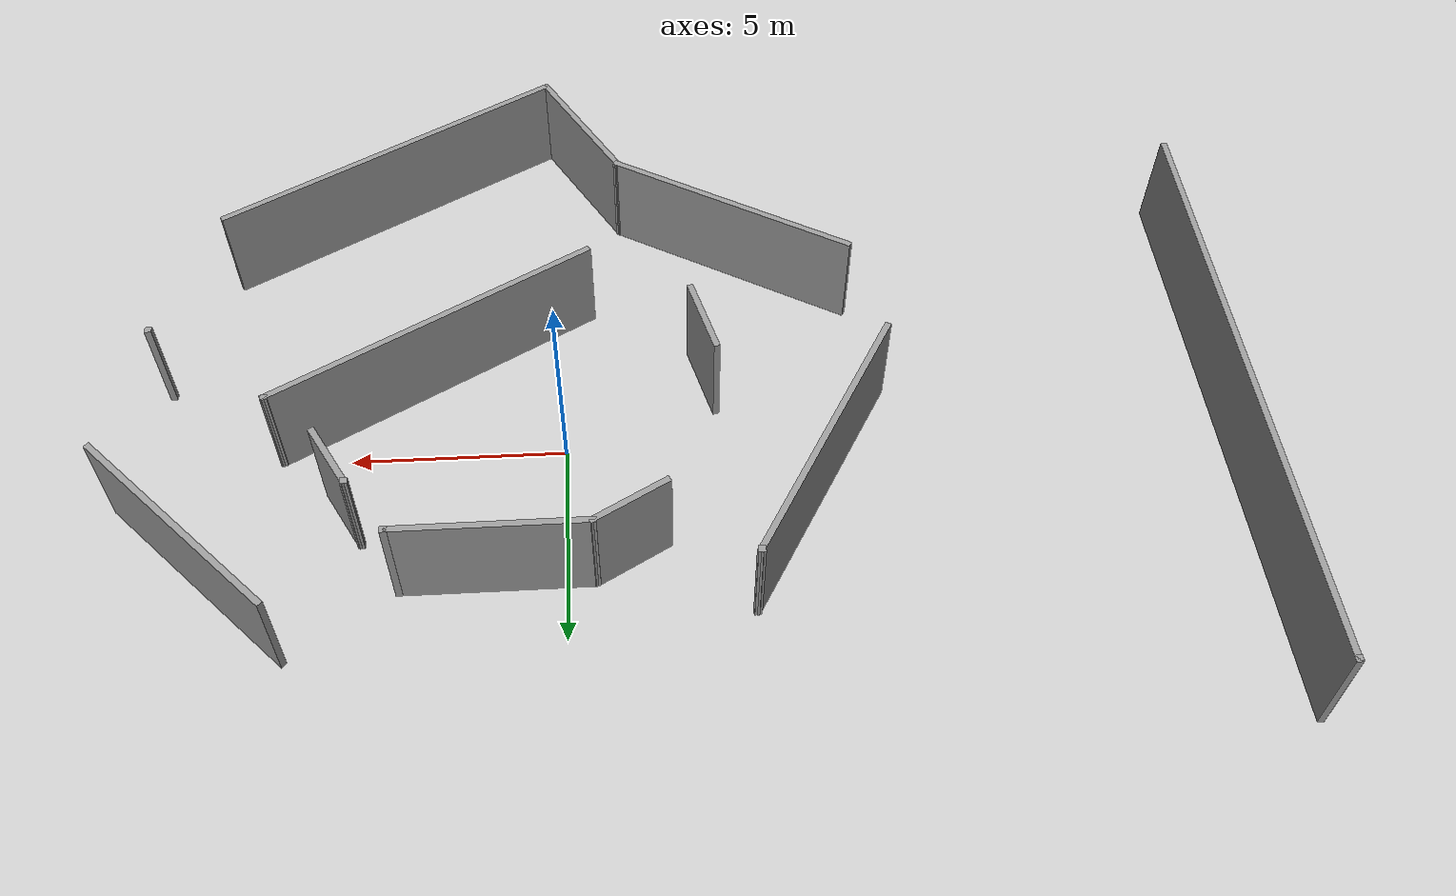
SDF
<sdf version="1.7">
 <world name="default">
  <light name="sun" type="directional">
   <pose>0 0 10 0 -0 0</pose>
   <diffuse>0.8 0.8 0.8 1</diffuse>
   <specular>0.2 0.2 0.2 1</specular>
   <attenuation>
    <range>1000</range>
    <constant>0.9</constant>
    <linear>0.01</linear>
    <quadratic>0.001</quadratic>
   </attenuation>
   <direction>-0.5 0.1 -0.9</direction>
   <spot><inner_angle>0</inner_angle><outer_angle>0</outer_angle><falloff>0</falloff></spot>
  </light>
  <model name="ground_plane">
   <static>1</static>
   <link name="link">
    <collision name="collision">
     <geometry><plane><normal>0 0 1</normal><size>100 100</size></plane></geometry>
     <surface>
      <contact><collide_bitmask>65535</collide_bitmask></contact>
      <friction><ode><mu>100</mu><mu2>50</mu2></ode></friction>
     </surface>
    </collision>
    <visual name="visual">
     <cast_shadows>0</cast_shadows>
     <geometry><plane><normal>0 0 1</normal><size>100 100</size></plane></geometry>
     <material>
      <script><uri>file://media/materials/scripts/gazebo.material</uri><name>Gazebo/Grey</name></script>
     </material>
    </visual>
   </link>
  </model>
  <gravity>0 0 -9.8</gravity>
  <magnetic_field>6e-06 2.3e-05 -4.2e-05</magnetic_field>
  <atmosphere type="adiabatic"/>
  <physics type="ode">
   <max_step_size>0.001</max_step_size>
   <real_time_factor>1</real_time_factor>
   <real_time_update_rate>1000</real_time_update_rate>
  </physics>
  <scene><ambient>0.4 0.4 0.4 1</ambient><background>0.7 0.7 0.7 1</background><shadows>1</shadows></scene>
  <spherical_coordinates>
   <surface_model>EARTH_WGS84</surface_model>
   <latitude_deg>0</latitude_deg>
   <longitude_deg>0</longitude_deg>
   <elevation>0</elevation>
   <heading_deg>0</heading_deg>
  </spherical_coordinates>
  <model name="world_walls">
   <pose>-2.636 -1.33743 0 0 -0 0</pose>
   <link name="Wall_0">
    <collision name="Wall_0_Collision">
     <geometry><box><size>2 0.15 2.5</size></box></geometry>
     <pose>0 0 1.25 0 -0 0</pose>
    </collision>
    <visual name="Wall_0_Visual">
     <pose>0 0 1.25 0 -0 0</pose>
     <geometry><box><size>2 0.15 2.5</size></box></geometry>
     <material>
      <script><uri>file://media/materials/scripts/gazebo.material</uri><name>Gazebo/Grey</name></script>
      <ambient>1 1 1 1</ambient>
     </material>
     <meta><layer>0</layer></meta>
    </visual>
    <pose>-0.683407 -0.62909 0 0 -0 1.8326</pose>
   </link>
   <link name="Wall_10">
    <collision name="Wall_10_Collision">
     <geometry><box><size>0.16 0.15 2.5</size></box></geometry>
     <pose>0 0 1.25 0 -0 0</pose>
    </collision>
    <visual name="Wall_10_Visual">
     <pose>0 0 1.25 0 -0 0</pose>
     <geometry><box><size>0.16 0.15 2.5</size></box></geometry>
     <material>
      <script><uri>file://media/materials/scripts/gazebo.material</uri><name>Gazebo/Grey</name></script>
      <ambient>1 1 1 1</ambient>
     </material>
     <meta><layer>0</layer></meta>
    </visual>
    <pose>6.32684 4.94438 0 0 -0 0</pose>
   </link>
   <link name="Wall_11">
    <collision name="Wall_11_Collision">
     <geometry><box><size>4.5 0.15 2.5</size></box></geometry>
     <pose>0 0 1.25 0 -0 0</pose>
    </collision>
    <visual name="Wall_11_Visual">
     <pose>0 0 1.25 0 -0 0</pose>
     <geometry><box><size>4.5 0.15 2.5</size></box></geometry>
     <material>
      <script><uri>file://media/materials/scripts/gazebo.material</uri><name>Gazebo/Grey</name></script>
      <ambient>1 1 1 1</ambient>
     </material>
     <meta><layer>0</layer></meta>
    </visual>
    <pose>4.15684 4.94438 0 0 -0 3.14159</pose>
   </link>
   <link name="Wall_12">
    <collision name="Wall_12_Collision">
     <geometry><box><size>2 0.15 2.5</size></box></geometry>
     <pose>0 0 1.25 0 -0 0</pose>
    </collision>
    <visual name="Wall_12_Visual">
     <pose>0 0 1.25 0 -0 0</pose>
     <geometry><box><size>2 0.15 2.5</size></box></geometry>
     <material>
      <script><uri>file://media/materials/scripts/gazebo.material</uri><name>Gazebo/Grey</name></script>
      <ambient>1 1 1 1</ambient>
     </material>
     <meta><layer>0</layer></meta>
    </visual>
    <pose>1.18076 4.48188 0 0 -0 -2.61799</pose>
   </link>
   <link name="Wall_14">
    <collision name="Wall_14_Collision">
     <geometry><box><size>0.16 0.15 2.5</size></box></geometry>
     <pose>0 0 1.25 0 -0 0</pose>
    </collision>
    <visual name="Wall_14_Visual">
     <pose>0 0 1.25 0 -0 0</pose>
     <geometry><box><size>0.16 0.15 2.5</size></box></geometry>
     <material>
      <script><uri>file://media/materials/scripts/gazebo.material</uri><name>Gazebo/Grey</name></script>
      <ambient>1 1 1 1</ambient>
     </material>
     <meta><layer>0</layer></meta>
    </visual>
    <pose>9.21865 1.25271 0 0 -0 0</pose>
   </link>
   <link name="Wall_15">
    <collision name="Wall_15_Collision">
     <geometry><box><size>8.5 0.15 2.5</size></box></geometry>
     <pose>0 0 1.25 0 -0 0</pose>
    </collision>
    <visual name="Wall_15_Visual">
     <pose>0 0 1.25 0 -0 0</pose>
     <geometry><box><size>8.5 0.15 2.5</size></box></geometry>
     <material>
      <script><uri>file://media/materials/scripts/gazebo.material</uri><name>Gazebo/Grey</name></script>
      <ambient>1 1 1 1</ambient>
     </material>
     <meta><layer>0</layer></meta>
    </visual>
    <pose>5.60799 -0.834792 0 0 -0 -2.61799</pose>
   </link>
   <link name="Wall_17">
    <collision name="Wall_17_Collision">
     <geometry><box><size>0.16 0.15 2.5</size></box></geometry>
     <pose>0 0 1.25 0 -0 0</pose>
    </collision>
    <visual name="Wall_17_Visual">
     <pose>0 0 1.25 0 -0 0</pose>
     <geometry><box><size>0.16 0.15 2.5</size></box></geometry>
     <material>
      <script><uri>file://media/materials/scripts/gazebo.material</uri><name>Gazebo/Grey</name></script>
      <ambient>1 1 1 1</ambient>
     </material>
     <meta><layer>0</layer></meta>
    </visual>
    <pose>7.24976 3.6523 0 0 -0 0</pose>
   </link>
   <link name="Wall_18">
    <collision name="Wall_18_Collision">
     <geometry><box><size>1.75 0.15 2.5</size></box></geometry>
     <pose>0 0 1.25 0 -0 0</pose>
    </collision>
    <visual name="Wall_18_Visual">
     <pose>0 0 1.25 0 -0 0</pose>
     <geometry><box><size>1.75 0.15 2.5</size></box></geometry>
     <material>
      <script><uri>file://media/materials/scripts/gazebo.material</uri><name>Gazebo/Grey</name></script>
      <ambient>1 1 1 1</ambient>
     </material>
     <meta><layer>0</layer></meta>
    </visual>
    <pose>7.65476 2.95947 0 0 -0 -1.0472</pose>
   </link>
   <link name="Wall_2">
    <collision name="Wall_2_Collision">
     <geometry><box><size>0.16 0.15 2.5</size></box></geometry>
     <pose>0 0 1.25 0 -0 0</pose>
    </collision>
    <visual name="Wall_2_Visual">
     <pose>0 0 1.25 0 -0 0</pose>
     <geometry><box><size>0.16 0.15 2.5</size></box></geometry>
     <material>
      <script><uri>file://media/materials/scripts/gazebo.material</uri><name>Gazebo/Grey</name></script>
      <ambient>1 1 1 1</ambient>
     </material>
     <meta><layer>0</layer></meta>
    </visual>
    <pose>-12.8699 9.06675 0 0 -0 0</pose>
   </link>
   <link name="Wall_20">
    <collision name="Wall_20_Collision">
     <geometry><box><size>0.16 0.15 2.5</size></box></geometry>
     <pose>0 0 1.25 0 -0 0</pose>
    </collision>
    <visual name="Wall_20_Visual">
     <pose>0 0 1.25 0 -0 0</pose>
     <geometry><box><size>0.16 0.15 2.5</size></box></geometry>
     <material>
      <script><uri>file://media/materials/scripts/gazebo.material</uri><name>Gazebo/Grey</name></script>
      <ambient>1 1 1 1</ambient>
     </material>
     <meta><layer>0</layer></meta>
    </visual>
    <pose>-1.4872 5.8673 0 0 -0 0</pose>
   </link>
   <link name="Wall_21">
    <collision name="Wall_21_Collision">
     <geometry><box><size>7 0.15 2.5</size></box></geometry>
     <pose>0 0 1.25 0 -0 0</pose>
    </collision>
    <visual name="Wall_21_Visual">
     <pose>0 0 1.25 0 -0 0</pose>
     <geometry><box><size>7 0.15 2.5</size></box></geometry>
     <material>
      <script><uri>file://media/materials/scripts/gazebo.material</uri><name>Gazebo/Grey</name></script>
      <ambient>1 1 1 1</ambient>
     </material>
     <meta><layer>0</layer></meta>
    </visual>
    <pose>-3.1947 2.90116 0 0 -0 -2.0944</pose>
   </link>
   <link name="Wall_23">
    <collision name="Wall_23_Collision">
     <geometry><box><size>6.5 0.15 2.5</size></box></geometry>
     <pose>0 0 1.25 0 -0 0</pose>
    </collision>
    <visual name="Wall_23_Visual">
     <pose>0 0 1.25 0 -0 0</pose>
     <geometry><box><size>6.5 0.15 2.5</size></box></geometry>
     <material>
      <script><uri>file://media/materials/scripts/gazebo.material</uri><name>Gazebo/Grey</name></script>
      <ambient>1 1 1 1</ambient>
     </material>
     <meta><layer>0</layer></meta>
    </visual>
    <pose>-1.57285 -4.3341 0 0 -0 -0.523599</pose>
   </link>
   <link name="Wall_24">
    <collision name="Wall_24_Collision">
     <geometry><box><size>3.75 0.15 2.5</size></box></geometry>
     <pose>0 0 1.25 0 -0 0</pose>
    </collision>
    <visual name="Wall_24_Visual">
     <pose>0 0 1.25 0 -0 0</pose>
     <geometry><box><size>3.75 0.15 2.5</size></box></geometry>
     <material>
      <script><uri>file://media/materials/scripts/gazebo.material</uri><name>Gazebo/Grey</name></script>
      <ambient>1 1 1 1</ambient>
     </material>
     <meta><layer>0</layer></meta>
    </visual>
    <pose>2.07678 -7.48045 0 0 -0 -1.0472</pose>
   </link>
   <link name="Wall_25">
    <collision name="Wall_25_Collision">
     <geometry><box><size>9.25 0.15 2.5</size></box></geometry>
     <pose>0 0 1.25 0 -0 0</pose>
    </collision>
    <visual name="Wall_25_Visual">
     <pose>0 0 1.25 0 -0 0</pose>
     <geometry><box><size>9.25 0.15 2.5</size></box></geometry>
     <material>
      <script><uri>file://media/materials/scripts/gazebo.material</uri><name>Gazebo/Grey</name></script>
      <ambient>1 1 1 1</ambient>
     </material>
     <meta><layer>0</layer></meta>
    </visual>
    <pose>6.91719 -6.7643 0 0 -0 0.523599</pose>
   </link>
   <link name="Wall_3">
    <collision name="Wall_3_Collision">
     <geometry><box><size>15 0.15 2.5</size></box></geometry>
     <pose>0 0 1.25 0 -0 0</pose>
    </collision>
    <visual name="Wall_3_Visual">
     <pose>0 0 1.25 0 -0 0</pose>
     <geometry><box><size>15 0.15 2.5</size></box></geometry>
     <material>
      <script><uri>file://media/materials/scripts/gazebo.material</uri><name>Gazebo/Grey</name></script>
      <ambient>1 1 1 1</ambient>
     </material>
     <meta><layer>0</layer></meta>
    </visual>
    <pose>-12.8649 1.64175 0 0 -0 -1.5708</pose>
   </link>
   <link name="Wall_5">
    <collision name="Wall_5_Collision">
     <geometry><box><size>6 0.15 2.5</size></box></geometry>
     <pose>0 0 1.25 0 -0 0</pose>
    </collision>
    <visual name="Wall_5_Visual">
     <pose>0 0 1.25 0 -0 0</pose>
     <geometry><box><size>6 0.15 2.5</size></box></geometry>
     <material>
      <script><uri>file://media/materials/scripts/gazebo.material</uri><name>Gazebo/Grey</name></script>
      <ambient>1 1 1 1</ambient>
     </material>
     <meta><layer>0</layer></meta>
    </visual>
    <pose>10.7755 4.49003 0 0 -0 2.35619</pose>
   </link>
   <link name="Wall_7">
    <collision name="Wall_7_Collision">
     <geometry><box><size>0.16 0.15 2.5</size></box></geometry>
     <pose>0 0 1.25 0 -0 0</pose>
    </collision>
    <visual name="Wall_7_Visual">
     <pose>0 0 1.25 0 -0 0</pose>
     <geometry><box><size>0.16 0.15 2.5</size></box></geometry>
     <material>
      <script><uri>file://media/materials/scripts/gazebo.material</uri><name>Gazebo/Grey</name></script>
      <ambient>1 1 1 1</ambient>
     </material>
     <meta><layer>0</layer></meta>
    </visual>
    <pose>12.1105 -0.900768 0 0 -0 0</pose>
   </link>
   <static>1</static>
  </model>
 </world>
</sdf>
